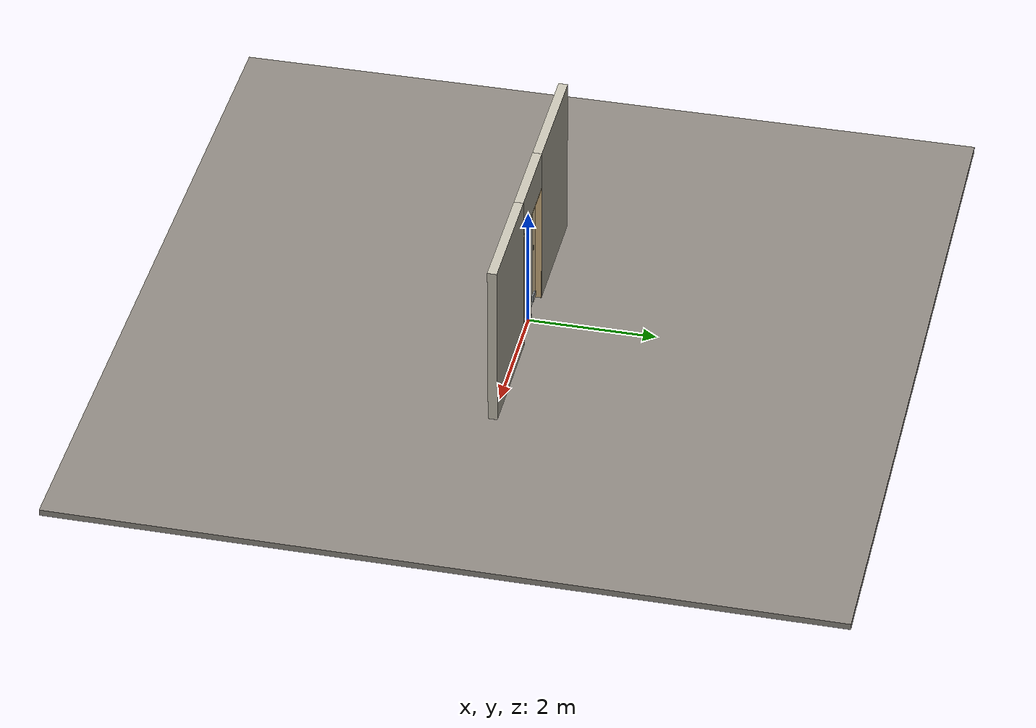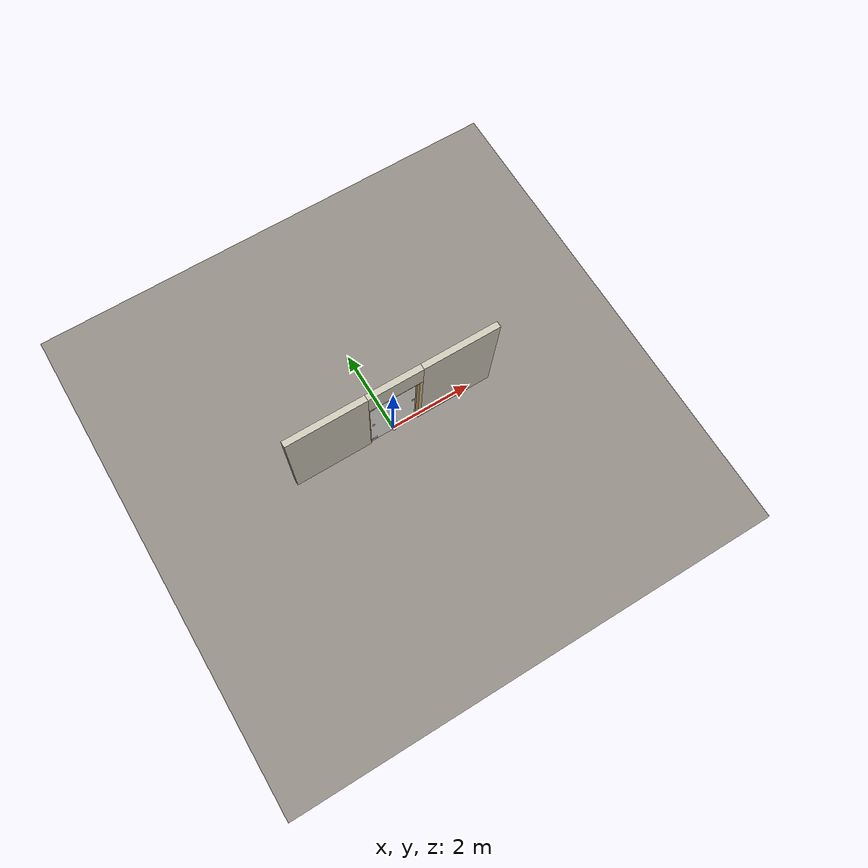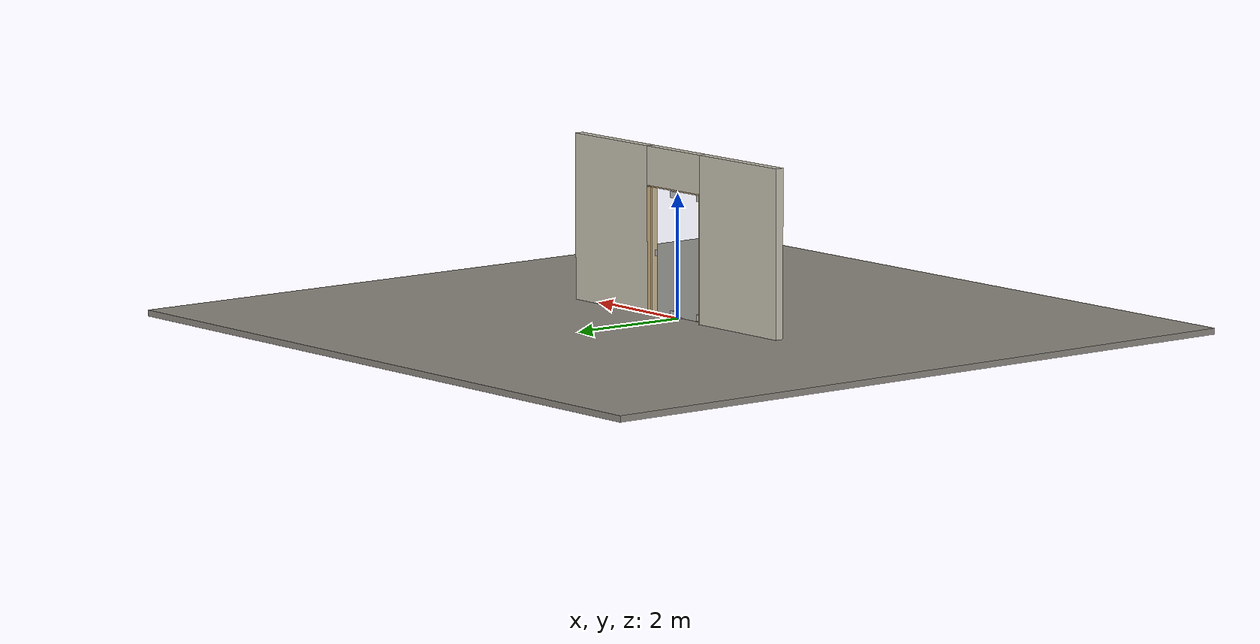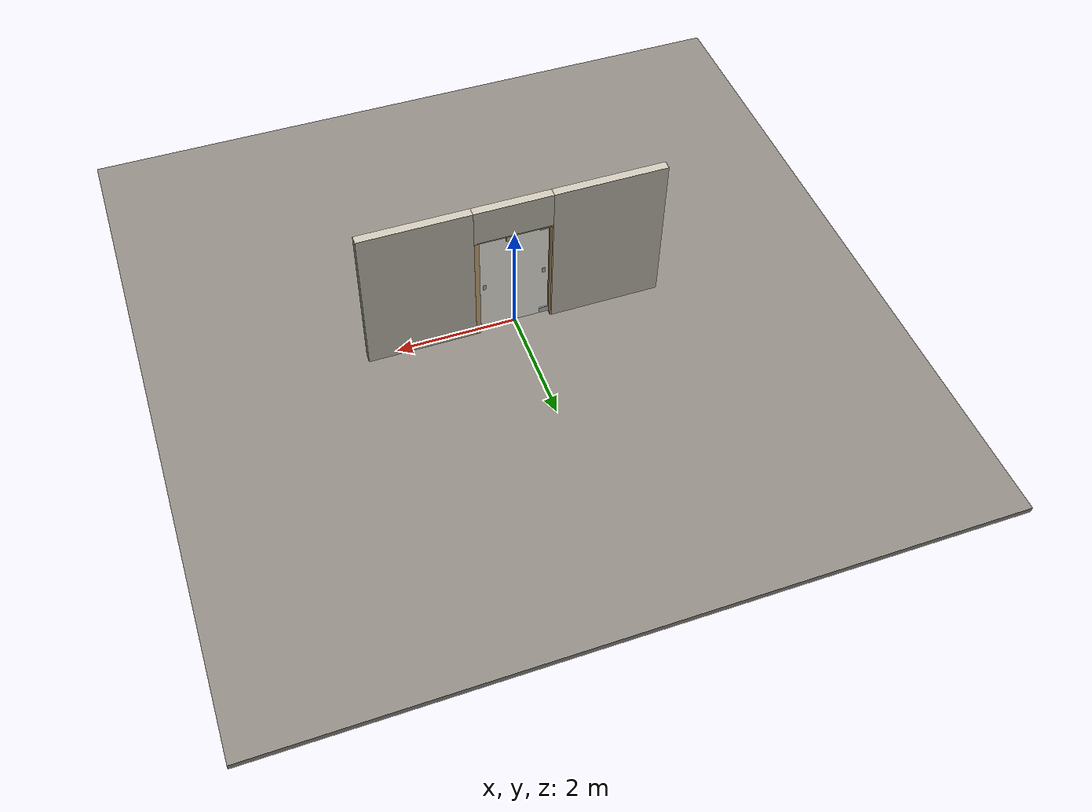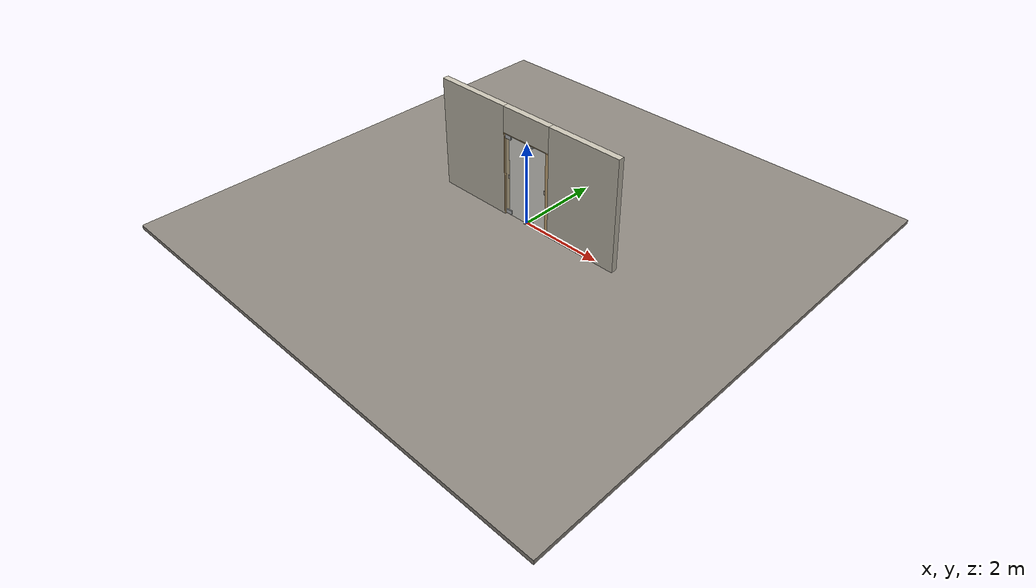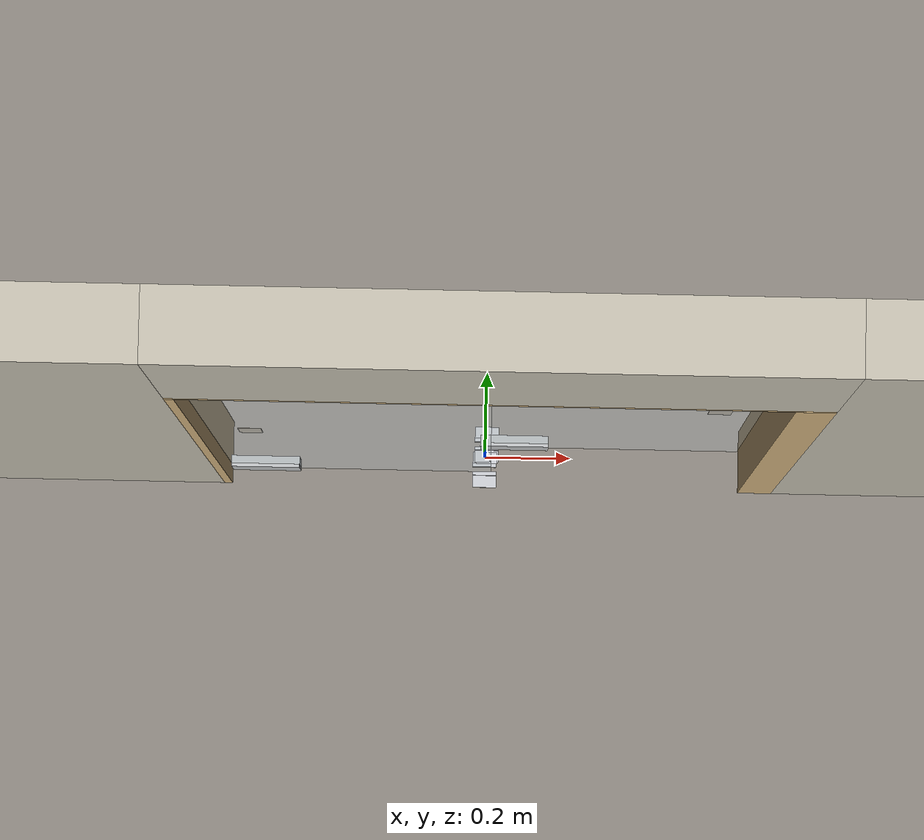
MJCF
<?xml version="1.0" ?>
<mujoco model="db0445_sliding_bypass_simple">
  <compiler angle="radian" meshdir="../../hardware" texturedir="../../textures" autolimits="true" inertiafromgeom="false"/>
  <option timestep="0.002" integrator="implicitfast" cone="elliptic" impratio="10" noslip_iterations="3">
    <flag multiccd="enable"/>
  </option>
  <size memory="16M"/>
  <default>
    <geom condim="4" solref="0.005 1" solimp="0.95 0.99 0.001"/>
    <joint solreflimit="0.005 1" solimplimit="0.95 0.99 0.001"/>
    <tendon solreflimit="0.005 1"/>
    <equality solref="0.002 1"/>
  </default>
  <visual>
    <headlight ambient="0.4 0.4 0.4" diffuse="0.7 0.7 0.7" specular="0.2 0.2 0.2"/>
    <quality shadowsize="4096"/>
    <map znear="0.01" zfar="60"/>
  </visual>
  <asset>
    <material name="mat_floor" rgba="0.55 0.53 0.5 1" specular="0.2" shininess="0.15" reflectance="0"/>
    <material name="mat_wall" rgba="0.78 0.76 0.7 1" specular="0.2" shininess="0.1" reflectance="0"/>
    <material name="mat_frame" rgba="0.82 0.7 0.5 1" specular="0.2" shininess="0.45" reflectance="0"/>
    <material name="mat_track" rgba="0.8 0.81 0.83 1" specular="0.8" shininess="0.6" reflectance="0.4"/>
    <material name="mat_leaf_0" rgba="0.85 0.92 0.95 0.25" specular="0.2" shininess="0.95" reflectance="0.1"/>
    <material name="mat_glass_leaf" rgba="0.85 0.92 0.95 0.25" specular="0.2" shininess="0.95" reflectance="0.1"/>
    <material name="mat_patch" rgba="0.75 0.76 0.77 1" specular="0.8" shininess="0.65" reflectance="0.4"/>
    <material name="mat_roller" rgba="0.65 0.66 0.68 1" specular="0.74" shininess="0.5" reflectance="0.36"/>
    <material name="mat_op_nickel_satin" rgba="0.72 0.7 0.66 1" specular="0.8" shininess="0.65" reflectance="0.4"/>
    <material name="mat_leaf_1" rgba="0.85 0.92 0.95 0.25" specular="0.2" shininess="0.95" reflectance="0.1"/>
    <material name="mat_hook" rgba="0.75 0.76 0.77 1" specular="0.8" shininess="0.65" reflectance="0.4"/>
    <texture name="skybox" type="skybox" builtin="gradient" rgb1="0.6 0.7 0.85" rgb2="0.9 0.92 0.95" width="256" height="256"/>
  </asset>
  <worldbody>
    <light name="sun" pos="1.5 -2.5 4" dir="-0.3 0.5 -0.8" directional="true" diffuse="0.8 0.8 0.8" specular="0.3 0.3 0.3" castshadow="true"/>
    <light name="fill" pos="-1.5 2.5 3" dir="0.3 -0.5 -0.7" directional="true" diffuse="0.35 0.35 0.4" castshadow="false"/>
    <camera name="robot_view" pos="0 -2.54875 1.73965" xyaxes="1 0 0 0 0.26963 0.962964" fovy="52"/>
    <camera name="far_view" pos="0 2.54875 1.73965" xyaxes="-1 0 0 0 -0.26963 0.962964" fovy="52"/>
    <camera name="iso" pos="1.93705 -2.14095 2.14745" xyaxes="0.741536 0.670913 0 -0.242917 0.268487 0.932151" fovy="46"/>
    <camera name="detail_handle" pos="-0.327 -0.835 1.28" xyaxes="0.97561 0.219512 0 -0.070934 0.315262 0.94635" fovy="38"/>
    <geom name="floor" type="box" size="6 6 0.05" pos="0 0 -0.05" material="mat_floor" group="0" contype="1" conaffinity="1" friction="0.8 0.005 0.0001" density="2400"/>
    <geom name="wall_left" type="box" size="0.9405 0.0725 1.35" pos="-1.5595 0 1.35" material="mat_wall" group="0" contype="1" conaffinity="1" friction="0.6 0.005 0.0001" density="800"/>
    <geom name="wall_right" type="box" size="0.9105 0.0725 1.35" pos="1.5895 0 1.35" material="mat_wall" group="0" contype="1" conaffinity="1" friction="0.6 0.005 0.0001" density="800"/>
    <geom name="wall_header" type="box" size="0.649 0.0725 0.3145" pos="0.03 0 2.3855" material="mat_wall" group="0" contype="1" conaffinity="1" friction="0.6 0.005 0.0001" density="800"/>
    <geom name="jamb_l" type="box" size="0.0095 0.0725 1.026" pos="-0.6095 0 1.026" material="mat_frame" group="0" contype="1" conaffinity="1" friction="0.6 0.005 0.0001" density="300"/>
    <geom name="jamb_head" type="box" size="0.619 0.0725 0.0095" pos="0 0 2.0615" material="mat_frame" group="0" contype="1" conaffinity="1" friction="0.6 0.005 0.0001" density="300"/>
    <geom name="leaf_0_track_header" type="box" size="0.645 0.025 0.04" pos="-0.002 -0.03 2.111" material="mat_track" group="0" contype="1" conaffinity="1" friction="0.6 0.005 0.0001" density="2700"/>
    <geom name="leaf_1_track_header" type="box" size="0.645 0.025 0.04" pos="0.002 0.03 2.111" material="mat_track" group="0" contype="1" conaffinity="1" friction="0.6 0.005 0.0001" density="2700"/>
    <geom name="leaf_0_floor_guide_0_n" type="box" size="0.028 0.004 0.01" pos="-0.002 -0.04 0.01" material="mat_track" group="0" contype="1" conaffinity="1" friction="0.6 0.005 0.0001" density="7850"/>
    <geom name="leaf_0_floor_guide_0_n_foot" type="box" size="0.028 0.018 0.002" pos="-0.002 -0.054 0.002" material="mat_track" group="0" contype="1" conaffinity="1" friction="0.6 0.005 0.0001" density="7850"/>
    <geom name="leaf_0_floor_guide_0_p" type="box" size="0.028 0.004 0.01" pos="-0.002 -0.02 0.01" material="mat_track" group="0" contype="1" conaffinity="1" friction="0.6 0.005 0.0001" density="7850"/>
    <geom name="leaf_0_floor_guide_0_p_foot" type="box" size="0.028 0.018 0.002" pos="-0.002 -0.006 0.002" material="mat_track" group="0" contype="1" conaffinity="1" friction="0.6 0.005 0.0001" density="7850"/>
    <geom name="leaf_1_floor_guide_0_n" type="box" size="0.028 0.004 0.01" pos="0.002 0.02 0.01" material="mat_track" group="0" contype="1" conaffinity="1" friction="0.6 0.005 0.0001" density="7850"/>
    <geom name="leaf_1_floor_guide_0_n_foot" type="box" size="0.028 0.018 0.002" pos="0.002 0.006 0.002" material="mat_track" group="0" contype="1" conaffinity="1" friction="0.6 0.005 0.0001" density="7850"/>
    <geom name="leaf_1_floor_guide_0_p" type="box" size="0.028 0.004 0.01" pos="0.002 0.04 0.01" material="mat_track" group="0" contype="1" conaffinity="1" friction="0.6 0.005 0.0001" density="7850"/>
    <geom name="leaf_1_floor_guide_0_p_foot" type="box" size="0.028 0.018 0.002" pos="0.002 0.054 0.002" material="mat_track" group="0" contype="1" conaffinity="1" friction="0.6 0.005 0.0001" density="7850"/>
    <geom name="jamb_latch_0" type="box" size="0.0395 0.0725 1.026" pos="0.6395 0 1.026" material="mat_frame" group="0" contype="1" conaffinity="1" friction="0.6 0.005 0.0001" density="300"/>
    <site name="approach_point" pos="0 -1.5 0" quat="1 0 0 0" size="0.05" rgba="0.2 0.9 0.2 0.5" group="4"/>
    <site name="goal_point" pos="0 1.5 0" quat="1 0 0 0" size="0.05" rgba="0.2 0.9 0.2 0.5" group="4"/>
    <site name="door_plane_center" pos="0 0 1.026" quat="1 0 0 0" size="0.02" rgba="0.2 0.9 0.2 0.5" group="4"/>
    <body name="leaf_0" pos="-0.292 -0.03 0">
      <inertial pos="-0.000812 -0.000018 1.02791" mass="19.31256" quat="0.500015 0.499954 0.500046 -0.499985" diaginertia="0.600182784 6.629963885 7.229821099"/>
      <joint name="leaf_0_slide" type="slide" axis="1 0 0" limited="true" range="0 0.564" damping="2.970628" frictionloss="3.712258" armature="0.5"/>
      <geom name="leaf_0_glass" type="box" size="0.305 0.005 1.016" pos="0 0 1.028" material="mat_glass_leaf" group="0" contype="1" conaffinity="1" friction="0.4 0.005 0.0001" density="1"/>
      <geom name="leaf_0_patch_bot" type="box" size="0.08 0.013 0.05" pos="-0.225 0 0.072" material="mat_patch" group="1" contype="0" conaffinity="0" density="1"/>
      <geom name="leaf_0_patch_top" type="box" size="0.08 0.013 0.05" pos="-0.225 0 1.984" material="mat_patch" group="1" contype="0" conaffinity="0" density="1"/>
      <geom name="leaf_0_pull_n" type="box" size="0.025 0.0005 0.05" pos="-0.215 -0.0055 1" material="mat_op_nickel_satin" group="1" contype="0" conaffinity="0" density="1000"/>
      <site name="leaf_0_pull_grip_n" pos="-0.215 -0.005 1" quat="1 0 0 0" size="0.012" rgba="0.2 0.9 0.2 0.5" group="4"/>
      <site name="leaf_0_edge_mid" pos="-0.305 0 1.028" quat="1 0 0 0" size="0.02" rgba="0.2 0.9 0.2 0.5" group="4"/>
    </body>
    <body name="leaf_1" pos="0.292 0.03 0">
      <inertial pos="0.000571 -0.000018 1.02791" mass="19.31256" quat="0.499985 0.500046 0.499954 -0.500015" diaginertia="0.600189211 6.629963885 7.229827526"/>
      <joint name="leaf_1_slide" type="slide" axis="-1 0 0" limited="true" range="0 0.564" damping="2.970628" frictionloss="3.712258" armature="0.5"/>
      <geom name="leaf_1_glass" type="box" size="0.305 0.005 1.016" pos="0 0 1.028" material="mat_glass_leaf" group="0" contype="1" conaffinity="1" friction="0.4 0.005 0.0001" density="1"/>
      <geom name="leaf_1_patch_bot" type="box" size="0.08 0.013 0.05" pos="-0.225 0 0.072" material="mat_patch" group="1" contype="0" conaffinity="0" density="1"/>
      <geom name="leaf_1_patch_top" type="box" size="0.08 0.013 0.05" pos="-0.225 0 1.984" material="mat_patch" group="1" contype="0" conaffinity="0" density="1"/>
      <geom name="leaf_1_pull_n" type="box" size="0.025 0.0005 0.05" pos="0.215 -0.0055 1" material="mat_op_nickel_satin" group="1" contype="0" conaffinity="0" density="1000"/>
      <site name="leaf_1_pull_grip_n" pos="0.215 -0.005 1" quat="1 0 0 0" size="0.012" rgba="0.2 0.9 0.2 0.5" group="4"/>
      <site name="leaf_1_edge_mid" pos="0.305 0 1.028" quat="1 0 0 0" size="0.02" rgba="0.2 0.9 0.2 0.5" group="4"/>
    </body>
  </worldbody>
  <sensor>
    <jointpos name="leaf_0_slide_pos" joint="leaf_0_slide"/>
    <jointvel name="leaf_0_slide_vel" joint="leaf_0_slide"/>
    <jointpos name="leaf_1_slide_pos" joint="leaf_1_slide"/>
    <jointvel name="leaf_1_slide_vel" joint="leaf_1_slide"/>
  </sensor>
</mujoco>
